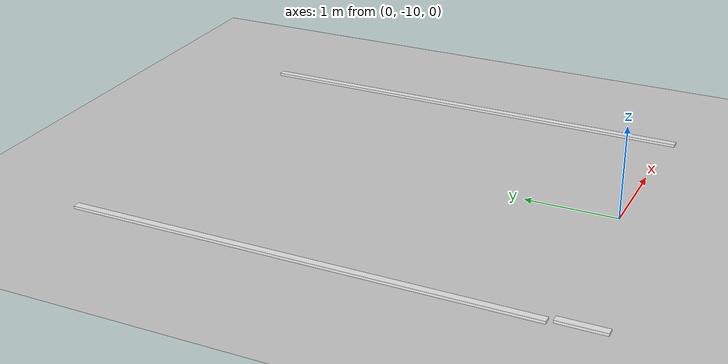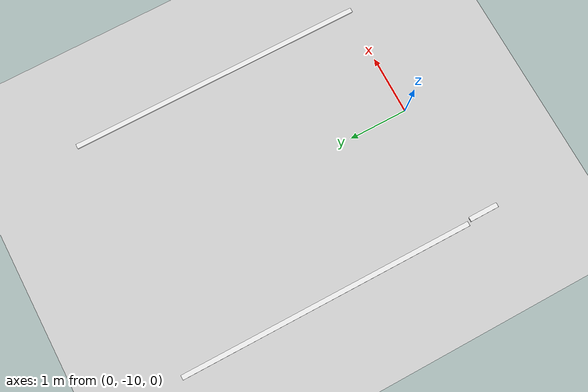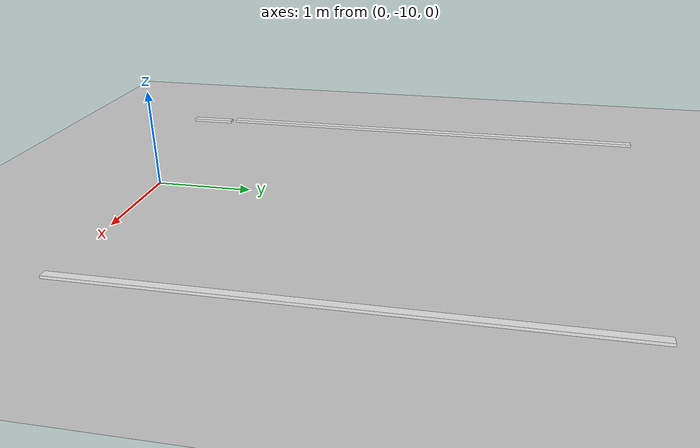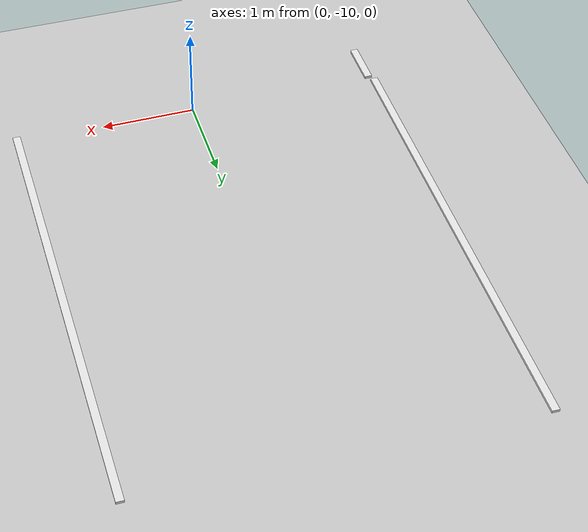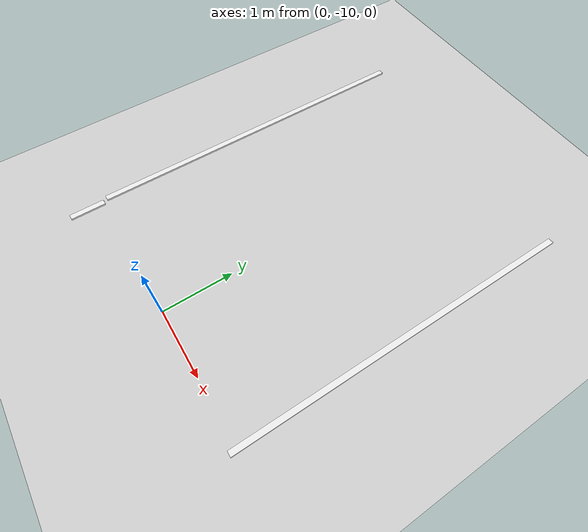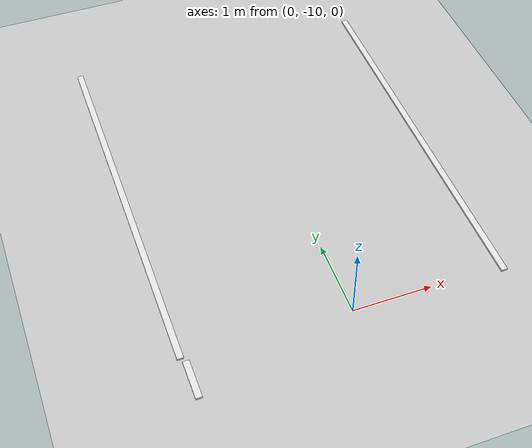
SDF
<sdf version="1.7">
 <world name="default">
  <model name="ground_plane">
   <static>1</static>
   <link name="link">
    <collision name="collision">
     <geometry><plane><normal>0 0 1</normal><size>100 100</size></plane></geometry>
     <surface><friction><ode><mu>100</mu><mu2>50</mu2></ode></friction></surface>
    </collision>
    <visual name="visual">
     <cast_shadows>0</cast_shadows>
     <geometry><plane><normal>0 0 1</normal><size>100 100</size></plane></geometry>
     <material>
      <script><uri>file://media/materials/scripts/gazebo.material</uri><name>Gazebo/Grey</name></script>
     </material>
    </visual>
   </link>
  </model>
  <model name="road_way5m_clone_2_clone_2">
   <link name="link">
    <inertial>
     <mass>1</mass>
     <inertia>
      <ixx>0.166667</ixx>
      <ixy>0</ixy>
      <ixz>0</ixz>
      <iyy>0.166667</iyy>
      <iyz>0</iyz>
      <izz>0.166667</izz>
     </inertia>
    </inertial>
    <visual name="visual">
     <geometry><box><size>0.08 5 0.03129</size></box></geometry>
     <material>
      <script><name>Gazebo/White</name><uri>file://media/materials/scripts/gazebo.material</uri></script>
      <shader type="pixel"><normal_map>__default__</normal_map></shader>
      <ambient>1 1 1 1</ambient>
      <diffuse>1 1 1 1</diffuse>
      <specular>0 0 0 1</specular>
      <emissive>0 0 0 1</emissive>
     </material>
    </visual>
    <collision name="collision">
     <geometry><box><size>0.01644 0.01348 0.0129</size></box></geometry>
     <surface>
      <friction>
       <ode><mu>1</mu><mu2>1</mu2><fdir1>0 0 0</fdir1><slip1>0</slip1><slip2>0</slip2></ode>
       <torsional>
        <coefficient>1</coefficient>
        <patch_radius>0</patch_radius>
        <surface_radius>0</surface_radius>
        <use_patch_radius>1</use_patch_radius>
        <ode><slip>0</slip></ode>
       </torsional>
      </friction>
      <bounce><restitution_coefficient>0</restitution_coefficient><threshold>1e+06</threshold></bounce>
      <contact>
       <collide_without_contact>0</collide_without_contact>
       <collide_without_contact_bitmask>1</collide_without_contact_bitmask>
       <collide_bitmask>1</collide_bitmask>
       <ode>
        <soft_cfm>0</soft_cfm>
        <soft_erp>0.2</soft_erp>
        <kp>1e+13</kp>
        <kd>1</kd>
        <max_vel>0.01</max_vel>
        <min_depth>0</min_depth>
       </ode>
       <bullet>
        <split_impulse>1</split_impulse>
        <split_impulse_penetration_threshold>-0.01</split_impulse_penetration_threshold>
        <soft_cfm>0</soft_cfm>
        <soft_erp>0.2</soft_erp>
        <kp>1e+13</kp>
        <kd>1</kd>
       </bullet>
      </contact>
     </surface>
    </collision>
   </link>
   <static>0</static>
   <pose>-2.05897 -7.44663 0.00645 4e-06 3e-06 -0.004167</pose>
  </model>
  <model name="road_way5m_clone_2_clone_3">
   <link name="link">
    <inertial>
     <mass>1</mass>
     <inertia>
      <ixx>0.166667</ixx>
      <ixy>0</ixy>
      <ixz>0</ixz>
      <iyy>0.166667</iyy>
      <iyz>0</iyz>
      <izz>0.166667</izz>
     </inertia>
    </inertial>
    <visual name="visual">
     <geometry><box><size>0.08 5 0.03129</size></box></geometry>
     <material>
      <script><name>Gazebo/White</name><uri>file://media/materials/scripts/gazebo.material</uri></script>
      <shader type="pixel"><normal_map>__default__</normal_map></shader>
      <ambient>1 1 1 1</ambient>
      <diffuse>1 1 1 1</diffuse>
      <specular>0 0 0 1</specular>
      <emissive>0 0 0 1</emissive>
     </material>
    </visual>
    <collision name="collision">
     <geometry><box><size>0.01644 0.01348 0.0129</size></box></geometry>
     <surface>
      <friction>
       <ode><mu>1</mu><mu2>1</mu2><fdir1>0 0 0</fdir1><slip1>0</slip1><slip2>0</slip2></ode>
       <torsional>
        <coefficient>1</coefficient>
        <patch_radius>0</patch_radius>
        <surface_radius>0</surface_radius>
        <use_patch_radius>1</use_patch_radius>
        <ode><slip>0</slip></ode>
       </torsional>
      </friction>
      <bounce><restitution_coefficient>0</restitution_coefficient><threshold>1e+06</threshold></bounce>
      <contact>
       <collide_without_contact>0</collide_without_contact>
       <collide_without_contact_bitmask>1</collide_without_contact_bitmask>
       <collide_bitmask>1</collide_bitmask>
       <ode>
        <soft_cfm>0</soft_cfm>
        <soft_erp>0.2</soft_erp>
        <kp>1e+13</kp>
        <kd>1</kd>
        <max_vel>0.01</max_vel>
        <min_depth>0</min_depth>
       </ode>
       <bullet>
        <split_impulse>1</split_impulse>
        <split_impulse_penetration_threshold>-0.01</split_impulse_penetration_threshold>
        <soft_cfm>0</soft_cfm>
        <soft_erp>0.2</soft_erp>
        <kp>1e+13</kp>
        <kd>1</kd>
       </bullet>
      </contact>
     </surface>
    </collision>
   </link>
   <static>0</static>
   <pose>1.94135 -7.58458 0.00645 1.7e-05 -1.7e-05 -0.004161</pose>
  </model>
  <model name="road_way2_0_clone">
   <link name="link">
    <inertial>
     <mass>1</mass>
     <inertia>
      <ixx>0.166667</ixx>
      <ixy>0</ixy>
      <ixz>0</ixz>
      <iyy>0.166667</iyy>
      <iyz>0</iyz>
      <izz>0.166667</izz>
     </inertia>
    </inertial>
    <visual name="visual">
     <geometry><box><size>0.08 0.5 0.03129</size></box></geometry>
     <material>
      <script><name>Gazebo/White</name><uri>file://media/materials/scripts/gazebo.material</uri></script>
      <shader type="pixel"><normal_map>__default__</normal_map></shader>
      <ambient>1 1 1 1</ambient>
      <diffuse>1 1 1 1</diffuse>
      <specular>0 0 0 1</specular>
      <emissive>0 0 0 1</emissive>
     </material>
    </visual>
    <collision name="collision">
     <geometry><box><size>0.01644 0.01348 0.0129</size></box></geometry>
     <surface>
      <friction>
       <ode><mu>1</mu><mu2>1</mu2><fdir1>0 0 0</fdir1><slip1>0</slip1><slip2>0</slip2></ode>
       <torsional>
        <coefficient>1</coefficient>
        <patch_radius>0</patch_radius>
        <surface_radius>0</surface_radius>
        <use_patch_radius>1</use_patch_radius>
        <ode><slip>0</slip></ode>
       </torsional>
      </friction>
      <bounce><restitution_coefficient>0</restitution_coefficient><threshold>1e+06</threshold></bounce>
      <contact>
       <collide_without_contact>0</collide_without_contact>
       <collide_without_contact_bitmask>1</collide_without_contact_bitmask>
       <collide_bitmask>1</collide_bitmask>
       <ode>
        <soft_cfm>0</soft_cfm>
        <soft_erp>0.2</soft_erp>
        <kp>1e+13</kp>
        <kd>1</kd>
        <max_vel>0.01</max_vel>
        <min_depth>0</min_depth>
       </ode>
       <bullet>
        <split_impulse>1</split_impulse>
        <split_impulse_penetration_threshold>-0.01</split_impulse_penetration_threshold>
        <soft_cfm>0</soft_cfm>
        <soft_erp>0.2</soft_erp>
        <kp>1e+13</kp>
        <kd>1</kd>
       </bullet>
      </contact>
     </surface>
    </collision>
   </link>
   <static>0</static>
   <pose>-2.02237 -10.2464 0.00645 -4.8e-05 6e-06 -3e-06</pose>
  </model>
 </world>
</sdf>
